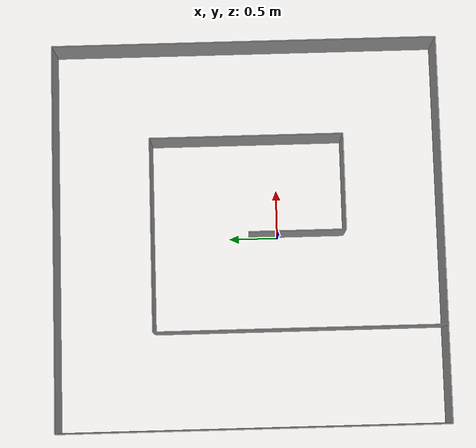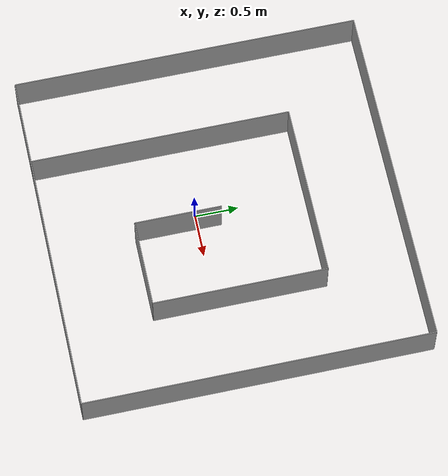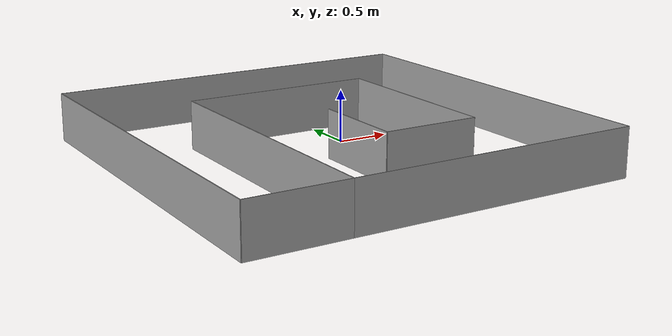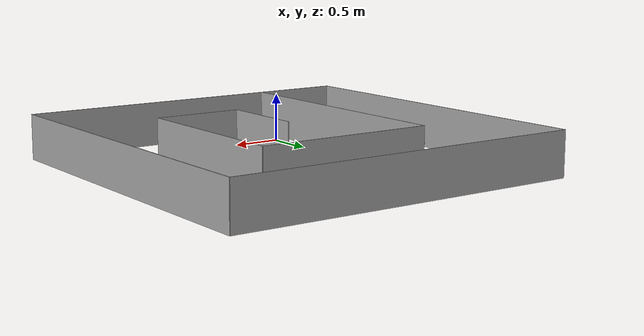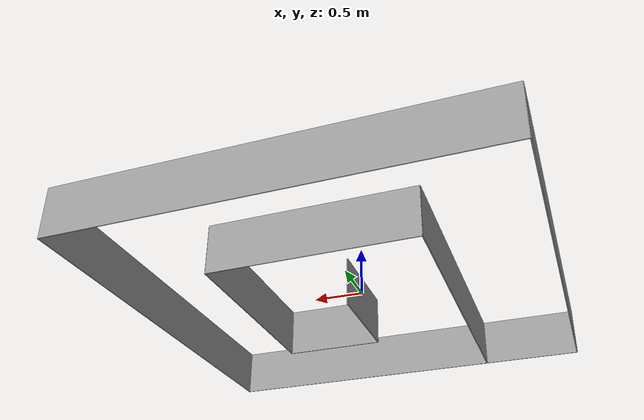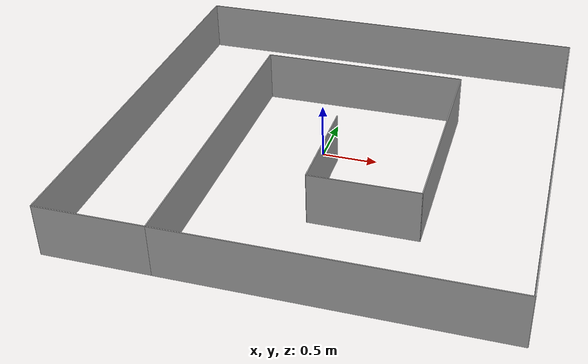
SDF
<?xml version='1.0'?>
<sdf version='1.7'>
  <model name='Small_spiral'>
    <link name='link_0'>
      <inertial>
        <mass>0.00533155</mass>
        <inertia>
          <ixx>0.00055625</ixx>
          <ixy>0</ixy>
          <ixz>0</ixz>
          <iyy>0.00011201</iyy>
          <iyz>0</iyz>
          <izz>0.00044434</izz>
        </inertia>
        <pose>0 0 0 0 -0 0</pose>
      </inertial>
      <pose>0.05 -0.2 0 0 -0 0</pose>
      <gravity>1</gravity>
      <self_collide>0</self_collide>
      <kinematic>0</kinematic>
      <enable_wind>0</enable_wind>
      <visual name='visual'>
        <pose>0 0 0 0 -0 0</pose>
        <geometry>
          <box>
            <size>0.010518 1 0.5</size>
          </box>
        </geometry>
        <material>
          <lighting>1</lighting>
          <script>
            <uri>file://media/materials/scripts/gazebo.material</uri>
            <name>Gazebo/Grey</name>
          </script>
          <shader type='pixel'>
            <normal_map>__default__</normal_map>
          </shader>
          <ambient>0.3 0.3 0.3 1</ambient>
          <diffuse>0.7 0.7 0.7 1</diffuse>
          <specular>0.01 0.01 0.01 1</specular>
          <emissive>0 0 0 1</emissive>
        </material>
        <transparency>0</transparency>
        <cast_shadows>1</cast_shadows>
      </visual>
      <collision name='collision'>
        <laser_retro>0</laser_retro>
        <max_contacts>10</max_contacts>
        <pose>0 0 0 0 -0 0</pose>
        <geometry>
          <box>
            <size>0.01 1 0.5</size>
          </box>
        </geometry>
        <surface>
          <friction>
            <ode>
              <mu>1</mu>
              <mu2>1</mu2>
              <fdir1>0 0 0</fdir1>
              <slip1>0</slip1>
              <slip2>0</slip2>
            </ode>
            <torsional>
              <coefficient>1</coefficient>
              <patch_radius>0</patch_radius>
              <surface_radius>0</surface_radius>
              <use_patch_radius>1</use_patch_radius>
              <ode>
                <slip>0</slip>
              </ode>
            </torsional>
          </friction>
          <bounce>
            <restitution_coefficient>0</restitution_coefficient>
            <threshold>1e+06</threshold>
          </bounce>
          <contact>
            <collide_without_contact>0</collide_without_contact>
            <collide_without_contact_bitmask>1</collide_without_contact_bitmask>
            <collide_bitmask>1</collide_bitmask>
            <ode>
              <soft_cfm>0</soft_cfm>
              <soft_erp>0.2</soft_erp>
              <kp>1e+13</kp>
              <kd>1</kd>
              <max_vel>0.01</max_vel>
              <min_depth>0</min_depth>
            </ode>
            <bullet>
              <split_impulse>1</split_impulse>
              <split_impulse_penetration_threshold>-0.01</split_impulse_penetration_threshold>
              <soft_cfm>0</soft_cfm>
              <soft_erp>0.2</soft_erp>
              <kp>1e+13</kp>
              <kd>1</kd>
            </bullet>
          </contact>
        </surface>
      </collision>
    </link>
    <link name='link_0_clone'>
      <inertial>
        <mass>0.00533155</mass>
        <inertia>
          <ixx>0.00055625</ixx>
          <ixy>0</ixy>
          <ixz>0</ixz>
          <iyy>0.00011201</iyy>
          <iyz>0</iyz>
          <izz>0.00044434</izz>
        </inertia>
        <pose>0 0 0 0 -0 0</pose>
      </inertial>
      <pose>1.05 0.3 0 0 -0 0</pose>
      <gravity>1</gravity>
      <self_collide>0</self_collide>
      <kinematic>0</kinematic>
      <enable_wind>0</enable_wind>
      <visual name='visual'>
        <pose>0 0 0 0 -0 0</pose>
        <geometry>
          <box>
            <size>0.01 2 0.5</size>
          </box>
        </geometry>
        <material>
          <lighting>1</lighting>
          <script>
            <uri>file://media/materials/scripts/gazebo.material</uri>
            <name>Gazebo/Grey</name>
          </script>
          <shader type='pixel'>
            <normal_map>__default__</normal_map>
          </shader>
          <ambient>0.3 0.3 0.3 1</ambient>
          <diffuse>0.7 0.7 0.7 1</diffuse>
          <specular>0.01 0.01 0.01 1</specular>
          <emissive>0 0 0 1</emissive>
        </material>
        <transparency>0</transparency>
        <cast_shadows>1</cast_shadows>
      </visual>
      <collision name='collision'>
        <laser_retro>0</laser_retro>
        <max_contacts>10</max_contacts>
        <pose>0 0 0 0 -0 0</pose>
        <geometry>
          <box>
            <size>0.01 2 0.5</size>
          </box>
        </geometry>
        <surface>
          <friction>
            <ode>
              <mu>1</mu>
              <mu2>1</mu2>
              <fdir1>0 0 0</fdir1>
              <slip1>0</slip1>
              <slip2>0</slip2>
            </ode>
            <torsional>
              <coefficient>1</coefficient>
              <patch_radius>0</patch_radius>
              <surface_radius>0</surface_radius>
              <use_patch_radius>1</use_patch_radius>
              <ode>
                <slip>0</slip>
              </ode>
            </torsional>
          </friction>
          <bounce>
            <restitution_coefficient>0</restitution_coefficient>
            <threshold>1e+06</threshold>
          </bounce>
          <contact>
            <collide_without_contact>0</collide_without_contact>
            <collide_without_contact_bitmask>1</collide_without_contact_bitmask>
            <collide_bitmask>1</collide_bitmask>
            <ode>
              <soft_cfm>0</soft_cfm>
              <soft_erp>0.2</soft_erp>
              <kp>1e+13</kp>
              <kd>1</kd>
              <max_vel>0.01</max_vel>
              <min_depth>0</min_depth>
            </ode>
            <bullet>
              <split_impulse>1</split_impulse>
              <split_impulse_penetration_threshold>-0.01</split_impulse_penetration_threshold>
              <soft_cfm>0</soft_cfm>
              <soft_erp>0.2</soft_erp>
              <kp>1e+13</kp>
              <kd>1</kd>
            </bullet>
          </contact>
        </surface>
      </collision>
    </link>
    <link name='link_0_clone_0'>
      <inertial>
        <mass>0.00533155</mass>
        <inertia>
          <ixx>0.00055625</ixx>
          <ixy>0</ixy>
          <ixz>0</ixz>
          <iyy>0.00011201</iyy>
          <iyz>0</iyz>
          <izz>0.00044434</izz>
        </inertia>
        <pose>0 0 0 0 -0 0</pose>
      </inertial>
      <pose>0.55 -0.7 0 0 -0 0</pose>
      <gravity>1</gravity>
      <self_collide>0</self_collide>
      <kinematic>0</kinematic>
      <enable_wind>0</enable_wind>
      <visual name='visual'>
        <pose>0 0 0 0 -0 0</pose>
        <geometry>
          <box>
            <size>1 0.01 0.5</size>
          </box>
        </geometry>
        <material>
          <lighting>1</lighting>
          <script>
            <uri>file://media/materials/scripts/gazebo.material</uri>
            <name>Gazebo/Grey</name>
          </script>
          <shader type='pixel'>
            <normal_map>__default__</normal_map>
          </shader>
          <ambient>0.3 0.3 0.3 1</ambient>
          <diffuse>0.7 0.7 0.7 1</diffuse>
          <specular>0.01 0.01 0.01 1</specular>
          <emissive>0 0 0 1</emissive>
        </material>
        <transparency>0</transparency>
        <cast_shadows>1</cast_shadows>
      </visual>
      <collision name='collision'>
        <laser_retro>0</laser_retro>
        <max_contacts>10</max_contacts>
        <pose>0 0 0 0 -0 0</pose>
        <geometry>
          <box>
            <size>1 0.01 0.5</size>
          </box>
        </geometry>
        <surface>
          <friction>
            <ode>
              <mu>1</mu>
              <mu2>1</mu2>
              <fdir1>0 0 0</fdir1>
              <slip1>0</slip1>
              <slip2>0</slip2>
            </ode>
            <torsional>
              <coefficient>1</coefficient>
              <patch_radius>0</patch_radius>
              <surface_radius>0</surface_radius>
              <use_patch_radius>1</use_patch_radius>
              <ode>
                <slip>0</slip>
              </ode>
            </torsional>
          </friction>
          <bounce>
            <restitution_coefficient>0</restitution_coefficient>
            <threshold>1e+06</threshold>
          </bounce>
          <contact>
            <collide_without_contact>0</collide_without_contact>
            <collide_without_contact_bitmask>1</collide_without_contact_bitmask>
            <collide_bitmask>1</collide_bitmask>
            <ode>
              <soft_cfm>0</soft_cfm>
              <soft_erp>0.2</soft_erp>
              <kp>1e+13</kp>
              <kd>1</kd>
              <max_vel>0.01</max_vel>
              <min_depth>0</min_depth>
            </ode>
            <bullet>
              <split_impulse>1</split_impulse>
              <split_impulse_penetration_threshold>-0.01</split_impulse_penetration_threshold>
              <soft_cfm>0</soft_cfm>
              <soft_erp>0.2</soft_erp>
              <kp>1e+13</kp>
              <kd>1</kd>
            </bullet>
          </contact>
        </surface>
      </collision>
    </link>
    <link name='link_0_clone_0_clone'>
      <inertial>
        <mass>0.00533155</mass>
        <inertia>
          <ixx>0.00055625</ixx>
          <ixy>0</ixy>
          <ixz>0</ixz>
          <iyy>0.00011201</iyy>
          <iyz>0</iyz>
          <izz>0.00044434</izz>
        </inertia>
        <pose>0 0 0 0 -0 0</pose>
      </inertial>
      <pose>-1.45 -1.7 0 0 -0 0</pose>
      <gravity>1</gravity>
      <self_collide>0</self_collide>
      <kinematic>0</kinematic>
      <enable_wind>0</enable_wind>
      <visual name='visual'>
        <pose>0 0 0 0 -0 0</pose>
        <geometry>
          <box>
            <size>1 0.01 0.5</size>
          </box>
        </geometry>
        <material>
          <lighting>1</lighting>
          <script>
            <uri>file://media/materials/scripts/gazebo.material</uri>
            <name>Gazebo/Grey</name>
          </script>
          <shader type='pixel'>
            <normal_map>__default__</normal_map>
          </shader>
          <ambient>0.3 0.3 0.3 1</ambient>
          <diffuse>0.7 0.7 0.7 1</diffuse>
          <specular>0.01 0.01 0.01 1</specular>
          <emissive>0 0 0 1</emissive>
        </material>
        <transparency>0</transparency>
        <cast_shadows>1</cast_shadows>
      </visual>
      <collision name='collision'>
        <laser_retro>0</laser_retro>
        <max_contacts>10</max_contacts>
        <pose>0 0 0 0 -0 0</pose>
        <geometry>
          <box>
            <size>1 0.01 0.5</size>
          </box>
        </geometry>
        <surface>
          <friction>
            <ode>
              <mu>1</mu>
              <mu2>1</mu2>
              <fdir1>0 0 0</fdir1>
              <slip1>0</slip1>
              <slip2>0</slip2>
            </ode>
            <torsional>
              <coefficient>1</coefficient>
              <patch_radius>0</patch_radius>
              <surface_radius>0</surface_radius>
              <use_patch_radius>1</use_patch_radius>
              <ode>
                <slip>0</slip>
              </ode>
            </torsional>
          </friction>
          <bounce>
            <restitution_coefficient>0</restitution_coefficient>
            <threshold>1e+06</threshold>
          </bounce>
          <contact>
            <collide_without_contact>0</collide_without_contact>
            <collide_without_contact_bitmask>1</collide_without_contact_bitmask>
            <collide_bitmask>1</collide_bitmask>
            <ode>
              <soft_cfm>0</soft_cfm>
              <soft_erp>0.2</soft_erp>
              <kp>1e+13</kp>
              <kd>1</kd>
              <max_vel>0.01</max_vel>
              <min_depth>0</min_depth>
            </ode>
            <bullet>
              <split_impulse>1</split_impulse>
              <split_impulse_penetration_threshold>-0.01</split_impulse_penetration_threshold>
              <soft_cfm>0</soft_cfm>
              <soft_erp>0.2</soft_erp>
              <kp>1e+13</kp>
              <kd>1</kd>
            </bullet>
          </contact>
        </surface>
      </collision>
    </link>
    <link name='link_0_clone_1'>
      <inertial>
        <mass>0.00533155</mass>
        <inertia>
          <ixx>0.00055625</ixx>
          <ixy>0</ixy>
          <ixz>0</ixz>
          <iyy>0.00011201</iyy>
          <iyz>0</iyz>
          <izz>0.00044434</izz>
        </inertia>
        <pose>0 0 0 0 -0 0</pose>
      </inertial>
      <pose>0.05 1.3 0 0 -0 0</pose>
      <gravity>1</gravity>
      <self_collide>0</self_collide>
      <kinematic>0</kinematic>
      <enable_wind>0</enable_wind>
      <visual name='visual'>
        <pose>0 0 0 0 -0 0</pose>
        <geometry>
          <box>
            <size>2 0.01 0.5</size>
          </box>
        </geometry>
        <material>
          <lighting>1</lighting>
          <script>
            <uri>file://media/materials/scripts/gazebo.material</uri>
            <name>Gazebo/Grey</name>
          </script>
          <shader type='pixel'>
            <normal_map>__default__</normal_map>
          </shader>
          <ambient>0.3 0.3 0.3 1</ambient>
          <diffuse>0.7 0.7 0.7 1</diffuse>
          <specular>0.01 0.01 0.01 1</specular>
          <emissive>0 0 0 1</emissive>
        </material>
        <transparency>0</transparency>
        <cast_shadows>1</cast_shadows>
      </visual>
      <collision name='collision'>
        <laser_retro>0</laser_retro>
        <max_contacts>10</max_contacts>
        <pose>0 0 0 0 -0 0</pose>
        <geometry>
          <box>
            <size>2 0.01 0.5</size>
          </box>
        </geometry>
        <surface>
          <friction>
            <ode>
              <mu>1</mu>
              <mu2>1</mu2>
              <fdir1>0 0 0</fdir1>
              <slip1>0</slip1>
              <slip2>0</slip2>
            </ode>
            <torsional>
              <coefficient>1</coefficient>
              <patch_radius>0</patch_radius>
              <surface_radius>0</surface_radius>
              <use_patch_radius>1</use_patch_radius>
              <ode>
                <slip>0</slip>
              </ode>
            </torsional>
          </friction>
          <bounce>
            <restitution_coefficient>0</restitution_coefficient>
            <threshold>1e+06</threshold>
          </bounce>
          <contact>
            <collide_without_contact>0</collide_without_contact>
            <collide_without_contact_bitmask>1</collide_without_contact_bitmask>
            <collide_bitmask>1</collide_bitmask>
            <ode>
              <soft_cfm>0</soft_cfm>
              <soft_erp>0.2</soft_erp>
              <kp>1e+13</kp>
              <kd>1</kd>
              <max_vel>0.01</max_vel>
              <min_depth>0</min_depth>
            </ode>
            <bullet>
              <split_impulse>1</split_impulse>
              <split_impulse_penetration_threshold>-0.01</split_impulse_penetration_threshold>
              <soft_cfm>0</soft_cfm>
              <soft_erp>0.2</soft_erp>
              <kp>1e+13</kp>
              <kd>1</kd>
            </bullet>
          </contact>
        </surface>
      </collision>
    </link>
    <link name='link_0_clone_1_clone'>
      <inertial>
        <mass>0.00533155</mass>
        <inertia>
          <ixx>0.00055625</ixx>
          <ixy>0</ixy>
          <ixz>0</ixz>
          <iyy>0.00011201</iyy>
          <iyz>0</iyz>
          <izz>0.00044434</izz>
        </inertia>
        <pose>0 0 0 0 -0 0</pose>
      </inertial>
      <pose>0.55 -1.7 0 0 -0 0</pose>
      <gravity>1</gravity>
      <self_collide>0</self_collide>
      <kinematic>0</kinematic>
      <enable_wind>0</enable_wind>
      <visual name='visual'>
        <pose>0 0 0 0 -0 0</pose>
        <geometry>
          <box>
            <size>3 0.01 0.5</size>
          </box>
        </geometry>
        <material>
          <lighting>1</lighting>
          <script>
            <uri>file://media/materials/scripts/gazebo.material</uri>
            <name>Gazebo/Grey</name>
          </script>
          <shader type='pixel'>
            <normal_map>__default__</normal_map>
          </shader>
          <ambient>0.3 0.3 0.3 1</ambient>
          <diffuse>0.7 0.7 0.7 1</diffuse>
          <specular>0.01 0.01 0.01 1</specular>
          <emissive>0 0 0 1</emissive>
        </material>
        <transparency>0</transparency>
        <cast_shadows>1</cast_shadows>
      </visual>
      <collision name='collision'>
        <laser_retro>0</laser_retro>
        <max_contacts>10</max_contacts>
        <pose>0 0 0 0 -0 0</pose>
        <geometry>
          <box>
            <size>3 0.01 0.5</size>
          </box>
        </geometry>
        <surface>
          <friction>
            <ode>
              <mu>1</mu>
              <mu2>1</mu2>
              <fdir1>0 0 0</fdir1>
              <slip1>0</slip1>
              <slip2>0</slip2>
            </ode>
            <torsional>
              <coefficient>1</coefficient>
              <patch_radius>0</patch_radius>
              <surface_radius>0</surface_radius>
              <use_patch_radius>1</use_patch_radius>
              <ode>
                <slip>0</slip>
              </ode>
            </torsional>
          </friction>
          <bounce>
            <restitution_coefficient>0</restitution_coefficient>
            <threshold>1e+06</threshold>
          </bounce>
          <contact>
            <collide_without_contact>0</collide_without_contact>
            <collide_without_contact_bitmask>1</collide_without_contact_bitmask>
            <collide_bitmask>1</collide_bitmask>
            <ode>
              <soft_cfm>0</soft_cfm>
              <soft_erp>0.2</soft_erp>
              <kp>1e+13</kp>
              <kd>1</kd>
              <max_vel>0.01</max_vel>
              <min_depth>0</min_depth>
            </ode>
            <bullet>
              <split_impulse>1</split_impulse>
              <split_impulse_penetration_threshold>-0.01</split_impulse_penetration_threshold>
              <soft_cfm>0</soft_cfm>
              <soft_erp>0.2</soft_erp>
              <kp>1e+13</kp>
              <kd>1</kd>
            </bullet>
          </contact>
        </surface>
      </collision>
    </link>
    <link name='link_0_clone_1_clone_clone'>
      <inertial>
        <mass>0.00533155</mass>
        <inertia>
          <ixx>0.00055625</ixx>
          <ixy>0</ixy>
          <ixz>0</ixz>
          <iyy>0.00011201</iyy>
          <iyz>0</iyz>
          <izz>0.00044434</izz>
        </inertia>
        <pose>0 0 0 0 -0 0</pose>
      </inertial>
      <pose>0.05 2.3 0 0 -0 0</pose>
      <gravity>1</gravity>
      <self_collide>0</self_collide>
      <kinematic>0</kinematic>
      <enable_wind>0</enable_wind>
      <visual name='visual'>
        <pose>0 0 0 0 -0 0</pose>
        <geometry>
          <box>
            <size>4 0.01 0.5</size>
          </box>
        </geometry>
        <material>
          <lighting>1</lighting>
          <script>
            <uri>file://media/materials/scripts/gazebo.material</uri>
            <name>Gazebo/Grey</name>
          </script>
          <shader type='pixel'>
            <normal_map>__default__</normal_map>
          </shader>
          <ambient>0.3 0.3 0.3 1</ambient>
          <diffuse>0.7 0.7 0.7 1</diffuse>
          <specular>0.01 0.01 0.01 1</specular>
          <emissive>0 0 0 1</emissive>
        </material>
        <transparency>0</transparency>
        <cast_shadows>1</cast_shadows>
      </visual>
      <collision name='collision'>
        <laser_retro>0</laser_retro>
        <max_contacts>10</max_contacts>
        <pose>0 0 0 0 -0 0</pose>
        <geometry>
          <box>
            <size>4 0.01 0.5</size>
          </box>
        </geometry>
        <surface>
          <friction>
            <ode>
              <mu>1</mu>
              <mu2>1</mu2>
              <fdir1>0 0 0</fdir1>
              <slip1>0</slip1>
              <slip2>0</slip2>
            </ode>
            <torsional>
              <coefficient>1</coefficient>
              <patch_radius>0</patch_radius>
              <surface_radius>0</surface_radius>
              <use_patch_radius>1</use_patch_radius>
              <ode>
                <slip>0</slip>
              </ode>
            </torsional>
          </friction>
          <bounce>
            <restitution_coefficient>0</restitution_coefficient>
            <threshold>1e+06</threshold>
          </bounce>
          <contact>
            <collide_without_contact>0</collide_without_contact>
            <collide_without_contact_bitmask>1</collide_without_contact_bitmask>
            <collide_bitmask>1</collide_bitmask>
            <ode>
              <soft_cfm>0</soft_cfm>
              <soft_erp>0.2</soft_erp>
              <kp>1e+13</kp>
              <kd>1</kd>
              <max_vel>0.01</max_vel>
              <min_depth>0</min_depth>
            </ode>
            <bullet>
              <split_impulse>1</split_impulse>
              <split_impulse_penetration_threshold>-0.01</split_impulse_penetration_threshold>
              <soft_cfm>0</soft_cfm>
              <soft_erp>0.2</soft_erp>
              <kp>1e+13</kp>
              <kd>1</kd>
            </bullet>
          </contact>
        </surface>
      </collision>
    </link>
    <link name='link_0_clone_2'>
      <inertial>
        <mass>0.00533155</mass>
        <inertia>
          <ixx>0.00055625</ixx>
          <ixy>0</ixy>
          <ixz>0</ixz>
          <iyy>0.00011201</iyy>
          <iyz>0</iyz>
          <izz>0.00044434</izz>
        </inertia>
        <pose>0 0 0 0 -0 0</pose>
      </inertial>
      <pose>-0.95 -0.2 0 0 -0 0</pose>
      <gravity>1</gravity>
      <self_collide>0</self_collide>
      <kinematic>0</kinematic>
      <enable_wind>0</enable_wind>
      <visual name='visual'>
        <pose>0 0 0 0 -0 0</pose>
        <geometry>
          <box>
            <size>0.01 3 0.5</size>
          </box>
        </geometry>
        <material>
          <lighting>1</lighting>
          <script>
            <uri>file://media/materials/scripts/gazebo.material</uri>
            <name>Gazebo/Grey</name>
          </script>
          <shader type='pixel'>
            <normal_map>__default__</normal_map>
          </shader>
          <ambient>0.3 0.3 0.3 1</ambient>
          <diffuse>0.7 0.7 0.7 1</diffuse>
          <specular>0.01 0.01 0.01 1</specular>
          <emissive>0 0 0 1</emissive>
        </material>
        <transparency>0</transparency>
        <cast_shadows>1</cast_shadows>
      </visual>
      <collision name='collision'>
        <laser_retro>0</laser_retro>
        <max_contacts>10</max_contacts>
        <pose>0 0 0 0 -0 0</pose>
        <geometry>
          <box>
            <size>0.01 3 0.5</size>
          </box>
        </geometry>
        <surface>
          <friction>
            <ode>
              <mu>1</mu>
              <mu2>1</mu2>
              <fdir1>0 0 0</fdir1>
              <slip1>0</slip1>
              <slip2>0</slip2>
            </ode>
            <torsional>
              <coefficient>1</coefficient>
              <patch_radius>0</patch_radius>
              <surface_radius>0</surface_radius>
              <use_patch_radius>1</use_patch_radius>
              <ode>
                <slip>0</slip>
              </ode>
            </torsional>
          </friction>
          <bounce>
            <restitution_coefficient>0</restitution_coefficient>
            <threshold>1e+06</threshold>
          </bounce>
          <contact>
            <collide_without_contact>0</collide_without_contact>
            <collide_without_contact_bitmask>1</collide_without_contact_bitmask>
            <collide_bitmask>1</collide_bitmask>
            <ode>
              <soft_cfm>0</soft_cfm>
              <soft_erp>0.2</soft_erp>
              <kp>1e+13</kp>
              <kd>1</kd>
              <max_vel>0.01</max_vel>
              <min_depth>0</min_depth>
            </ode>
            <bullet>
              <split_impulse>1</split_impulse>
              <split_impulse_penetration_threshold>-0.01</split_impulse_penetration_threshold>
              <soft_cfm>0</soft_cfm>
              <soft_erp>0.2</soft_erp>
              <kp>1e+13</kp>
              <kd>1</kd>
            </bullet>
          </contact>
        </surface>
      </collision>
    </link>
    <link name='link_0_clone_2_clone'>
      <inertial>
        <mass>0.00533155</mass>
        <inertia>
          <ixx>0.00055625</ixx>
          <ixy>0</ixy>
          <ixz>0</ixz>
          <iyy>0.00011201</iyy>
          <iyz>0</iyz>
          <izz>0.00044434</izz>
        </inertia>
        <pose>0 0 0 0 -0 0</pose>
      </inertial>
      <pose>2.05 0.3 0 0 -0 0</pose>
      <gravity>1</gravity>
      <self_collide>0</self_collide>
      <kinematic>0</kinematic>
      <enable_wind>0</enable_wind>
      <visual name='visual'>
        <pose>0 0 0 0 -0 0</pose>
        <geometry>
          <box>
            <size>0.01 4 0.5</size>
          </box>
        </geometry>
        <material>
          <lighting>1</lighting>
          <script>
            <uri>file://media/materials/scripts/gazebo.material</uri>
            <name>Gazebo/Grey</name>
          </script>
          <shader type='pixel'>
            <normal_map>__default__</normal_map>
          </shader>
          <ambient>0.3 0.3 0.3 1</ambient>
          <diffuse>0.7 0.7 0.7 1</diffuse>
          <specular>0.01 0.01 0.01 1</specular>
          <emissive>0 0 0 1</emissive>
        </material>
        <transparency>0</transparency>
        <cast_shadows>1</cast_shadows>
      </visual>
      <collision name='collision'>
        <laser_retro>0</laser_retro>
        <max_contacts>10</max_contacts>
        <pose>0 0 0 0 -0 0</pose>
        <geometry>
          <box>
            <size>0.01 4 0.5</size>
          </box>
        </geometry>
        <surface>
          <friction>
            <ode>
              <mu>1</mu>
              <mu2>1</mu2>
              <fdir1>0 0 0</fdir1>
              <slip1>0</slip1>
              <slip2>0</slip2>
            </ode>
            <torsional>
              <coefficient>1</coefficient>
              <patch_radius>0</patch_radius>
              <surface_radius>0</surface_radius>
              <use_patch_radius>1</use_patch_radius>
              <ode>
                <slip>0</slip>
              </ode>
            </torsional>
          </friction>
          <bounce>
            <restitution_coefficient>0</restitution_coefficient>
            <threshold>1e+06</threshold>
          </bounce>
          <contact>
            <collide_without_contact>0</collide_without_contact>
            <collide_without_contact_bitmask>1</collide_without_contact_bitmask>
            <collide_bitmask>1</collide_bitmask>
            <ode>
              <soft_cfm>0</soft_cfm>
              <soft_erp>0.2</soft_erp>
              <kp>1e+13</kp>
              <kd>1</kd>
              <max_vel>0.01</max_vel>
              <min_depth>0</min_depth>
            </ode>
            <bullet>
              <split_impulse>1</split_impulse>
              <split_impulse_penetration_threshold>-0.01</split_impulse_penetration_threshold>
              <soft_cfm>0</soft_cfm>
              <soft_erp>0.2</soft_erp>
              <kp>1e+13</kp>
              <kd>1</kd>
            </bullet>
          </contact>
        </surface>
      </collision>
    </link>
    <link name='link_0_clone_2_clone_clone'>
      <inertial>
        <mass>0.00533155</mass>
        <inertia>
          <ixx>0.00055625</ixx>
          <ixy>0</ixy>
          <ixz>0</ixz>
          <iyy>0.00011201</iyy>
          <iyz>0</iyz>
          <izz>0.00044434</izz>
        </inertia>
        <pose>0 0 0 0 -0 0</pose>
      </inertial>
      <pose>-1.95 0.3 0 0 -0 0</pose>
      <gravity>1</gravity>
      <self_collide>0</self_collide>
      <kinematic>0</kinematic>
      <enable_wind>0</enable_wind>
      <visual name='visual'>
        <pose>0 0 0 0 -0 0</pose>
        <geometry>
          <box>
            <size>0.01 4 0.5</size>
          </box>
        </geometry>
        <material>
          <lighting>1</lighting>
          <script>
            <uri>file://media/materials/scripts/gazebo.material</uri>
            <name>Gazebo/Grey</name>
          </script>
          <shader type='pixel'>
            <normal_map>__default__</normal_map>
          </shader>
          <ambient>0.3 0.3 0.3 1</ambient>
          <diffuse>0.7 0.7 0.7 1</diffuse>
          <specular>0.01 0.01 0.01 1</specular>
          <emissive>0 0 0 1</emissive>
        </material>
        <transparency>0</transparency>
        <cast_shadows>1</cast_shadows>
      </visual>
      <collision name='collision'>
        <laser_retro>0</laser_retro>
        <max_contacts>10</max_contacts>
        <pose>0 0 0 0 -0 0</pose>
        <geometry>
          <box>
            <size>0.01 4 0.5</size>
          </box>
        </geometry>
        <surface>
          <friction>
            <ode>
              <mu>1</mu>
              <mu2>1</mu2>
              <fdir1>0 0 0</fdir1>
              <slip1>0</slip1>
              <slip2>0</slip2>
            </ode>
            <torsional>
              <coefficient>1</coefficient>
              <patch_radius>0</patch_radius>
              <surface_radius>0</surface_radius>
              <use_patch_radius>1</use_patch_radius>
              <ode>
                <slip>0</slip>
              </ode>
            </torsional>
          </friction>
          <bounce>
            <restitution_coefficient>0</restitution_coefficient>
            <threshold>1e+06</threshold>
          </bounce>
          <contact>
            <collide_without_contact>0</collide_without_contact>
            <collide_without_contact_bitmask>1</collide_without_contact_bitmask>
            <collide_bitmask>1</collide_bitmask>
            <ode>
              <soft_cfm>0</soft_cfm>
              <soft_erp>0.2</soft_erp>
              <kp>1e+13</kp>
              <kd>1</kd>
              <max_vel>0.01</max_vel>
              <min_depth>0</min_depth>
            </ode>
            <bullet>
              <split_impulse>1</split_impulse>
              <split_impulse_penetration_threshold>-0.01</split_impulse_penetration_threshold>
              <soft_cfm>0</soft_cfm>
              <soft_erp>0.2</soft_erp>
              <kp>1e+13</kp>
              <kd>1</kd>
            </bullet>
          </contact>
        </surface>
      </collision>
    </link>
    <static>0</static>
    <allow_auto_disable>1</allow_auto_disable>
  </model>
</sdf>
